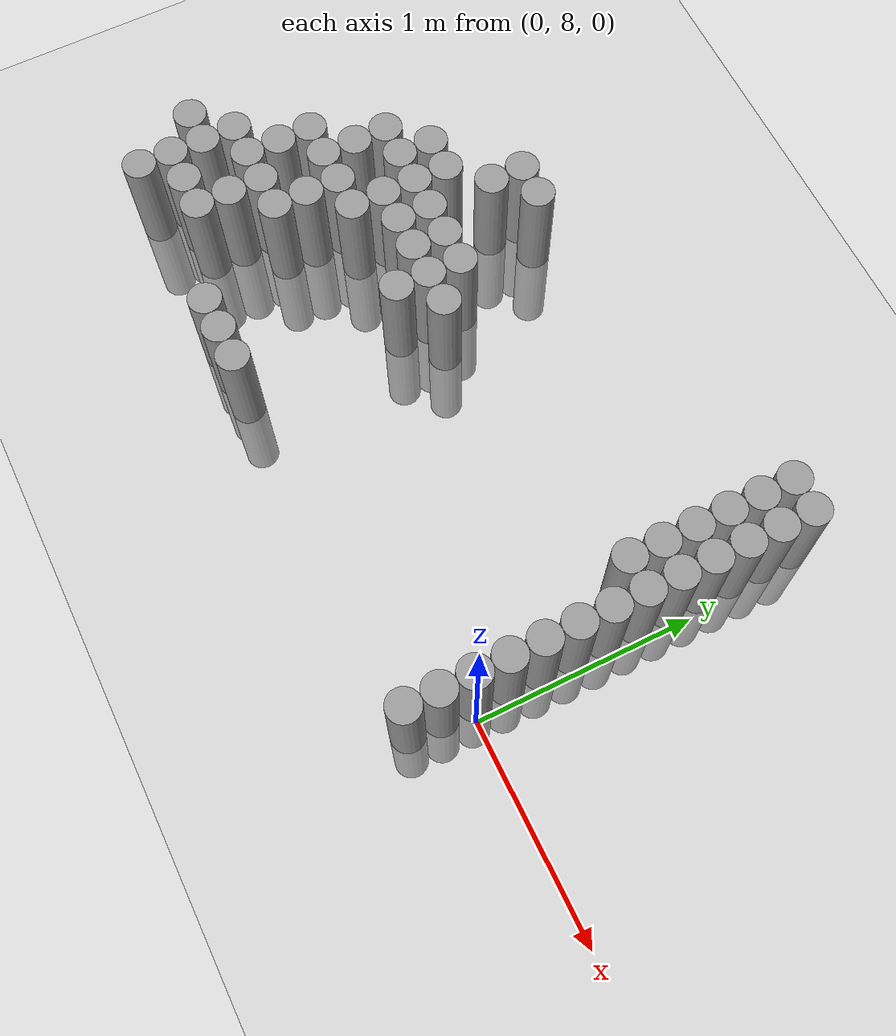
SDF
<sdf version="1.6">
 <world name="default">
  <model name="ground_plane">
   <static>1</static>
   <static>1</static>
   <link name="link">
    <collision name="collision">
     <geometry><plane><normal>0 0 1</normal><size>100 100</size></plane></geometry>
     <surface><friction><ode><mu>100</mu><mu2>50</mu2></ode></friction></surface>
    </collision>
    <visual name="visual">
     <cast_shadows>0</cast_shadows>
     <geometry><plane><normal>0 0 1</normal><size>100 100</size></plane></geometry>
     <material>
      <script><uri>file://media/materials/scripts/gazebo.material</uri><name>Gazebo/Grey</name></script>
     </material>
    </visual>
   </link>
  </model>
  <model name="unit_cylinder_165">
   <static>1</static>
   <pose>-2.925000 8.025000 0.000000 0.000000 0.000000 0.000000</pose>
   <link name="link">
    <inertial>
     <mass>1</mass>
     <inertia><ixx>0.145833</ixx><ixy>0</ixy><ixz>0</ixz><iyy>0.145833</iyy><iyz>0</iyz><izz>0.125</izz></inertia>
    </inertial>
    <collision name="collision">
     <geometry><cylinder><radius>0.075000</radius><length>1</length></cylinder></geometry>
    </collision>
    <visual name="visual">
     <geometry><cylinder><radius>0.075000</radius><length>1</length></cylinder></geometry>
     <material>
      <script><name>Gazebo/Grey</name><uri>file://media/materials/scripts/gazebo.material</uri></script>
     </material>
    </visual>
   </link>
  </model>
  <model name="unit_cylinder_169">
   <static>1</static>
   <pose>-2.775000 7.725000 0.000000 0.000000 0.000000 0.000000</pose>
   <link name="link">
    <inertial>
     <mass>1</mass>
     <inertia><ixx>0.145833</ixx><ixy>0</ixy><ixz>0</ixz><iyy>0.145833</iyy><iyz>0</iyz><izz>0.125</izz></inertia>
    </inertial>
    <collision name="collision">
     <geometry><cylinder><radius>0.075000</radius><length>1</length></cylinder></geometry>
    </collision>
    <visual name="visual">
     <geometry><cylinder><radius>0.075000</radius><length>1</length></cylinder></geometry>
     <material>
      <script><name>Gazebo/Grey</name><uri>file://media/materials/scripts/gazebo.material</uri></script>
     </material>
    </visual>
   </link>
  </model>
  <model name="unit_cylinder_170">
   <static>1</static>
   <pose>-2.775000 7.875000 0.000000 0.000000 0.000000 0.000000</pose>
   <link name="link">
    <inertial>
     <mass>1</mass>
     <inertia><ixx>0.145833</ixx><ixy>0</ixy><ixz>0</ixz><iyy>0.145833</iyy><iyz>0</iyz><izz>0.125</izz></inertia>
    </inertial>
    <collision name="collision">
     <geometry><cylinder><radius>0.075000</radius><length>1</length></cylinder></geometry>
    </collision>
    <visual name="visual">
     <geometry><cylinder><radius>0.075000</radius><length>1</length></cylinder></geometry>
     <material>
      <script><name>Gazebo/Grey</name><uri>file://media/materials/scripts/gazebo.material</uri></script>
     </material>
    </visual>
   </link>
  </model>
  <model name="unit_cylinder_171">
   <static>1</static>
   <pose>-2.775000 8.025000 0.000000 0.000000 0.000000 0.000000</pose>
   <link name="link">
    <inertial>
     <mass>1</mass>
     <inertia><ixx>0.145833</ixx><ixy>0</ixy><ixz>0</ixz><iyy>0.145833</iyy><iyz>0</iyz><izz>0.125</izz></inertia>
    </inertial>
    <collision name="collision">
     <geometry><cylinder><radius>0.075000</radius><length>1</length></cylinder></geometry>
    </collision>
    <visual name="visual">
     <geometry><cylinder><radius>0.075000</radius><length>1</length></cylinder></geometry>
     <material>
      <script><name>Gazebo/Grey</name><uri>file://media/materials/scripts/gazebo.material</uri></script>
     </material>
    </visual>
   </link>
  </model>
  <model name="unit_cylinder_172">
   <static>1</static>
   <pose>-2.775000 8.175000 0.000000 0.000000 0.000000 0.000000</pose>
   <link name="link">
    <inertial>
     <mass>1</mass>
     <inertia><ixx>0.145833</ixx><ixy>0</ixy><ixz>0</ixz><iyy>0.145833</iyy><iyz>0</iyz><izz>0.125</izz></inertia>
    </inertial>
    <collision name="collision">
     <geometry><cylinder><radius>0.075000</radius><length>1</length></cylinder></geometry>
    </collision>
    <visual name="visual">
     <geometry><cylinder><radius>0.075000</radius><length>1</length></cylinder></geometry>
     <material>
      <script><name>Gazebo/Grey</name><uri>file://media/materials/scripts/gazebo.material</uri></script>
     </material>
    </visual>
   </link>
  </model>
  <model name="unit_cylinder_175">
   <static>1</static>
   <pose>-2.625000 7.875000 0.000000 0.000000 0.000000 0.000000</pose>
   <link name="link">
    <inertial>
     <mass>1</mass>
     <inertia><ixx>0.145833</ixx><ixy>0</ixy><ixz>0</ixz><iyy>0.145833</iyy><iyz>0</iyz><izz>0.125</izz></inertia>
    </inertial>
    <collision name="collision">
     <geometry><cylinder><radius>0.075000</radius><length>1</length></cylinder></geometry>
    </collision>
    <visual name="visual">
     <geometry><cylinder><radius>0.075000</radius><length>1</length></cylinder></geometry>
     <material>
      <script><name>Gazebo/Grey</name><uri>file://media/materials/scripts/gazebo.material</uri></script>
     </material>
    </visual>
   </link>
  </model>
  <model name="unit_cylinder_176">
   <static>1</static>
   <pose>-2.625000 8.175000 0.000000 0.000000 0.000000 0.000000</pose>
   <link name="link">
    <inertial>
     <mass>1</mass>
     <inertia><ixx>0.145833</ixx><ixy>0</ixy><ixz>0</ixz><iyy>0.145833</iyy><iyz>0</iyz><izz>0.125</izz></inertia>
    </inertial>
    <collision name="collision">
     <geometry><cylinder><radius>0.075000</radius><length>1</length></cylinder></geometry>
    </collision>
    <visual name="visual">
     <geometry><cylinder><radius>0.075000</radius><length>1</length></cylinder></geometry>
     <material>
      <script><name>Gazebo/Grey</name><uri>file://media/materials/scripts/gazebo.material</uri></script>
     </material>
    </visual>
   </link>
  </model>
  <model name="unit_cylinder_177">
   <static>1</static>
   <pose>-2.625000 8.325000 0.000000 0.000000 0.000000 0.000000</pose>
   <link name="link">
    <inertial>
     <mass>1</mass>
     <inertia><ixx>0.145833</ixx><ixy>0</ixy><ixz>0</ixz><iyy>0.145833</iyy><iyz>0</iyz><izz>0.125</izz></inertia>
    </inertial>
    <collision name="collision">
     <geometry><cylinder><radius>0.075000</radius><length>1</length></cylinder></geometry>
    </collision>
    <visual name="visual">
     <geometry><cylinder><radius>0.075000</radius><length>1</length></cylinder></geometry>
     <material>
      <script><name>Gazebo/Grey</name><uri>file://media/materials/scripts/gazebo.material</uri></script>
     </material>
    </visual>
   </link>
  </model>
  <model name="unit_cylinder_178">
   <static>1</static>
   <pose>-2.625000 8.475000 0.000000 0.000000 0.000000 0.000000</pose>
   <link name="link">
    <inertial>
     <mass>1</mass>
     <inertia><ixx>0.145833</ixx><ixy>0</ixy><ixz>0</ixz><iyy>0.145833</iyy><iyz>0</iyz><izz>0.125</izz></inertia>
    </inertial>
    <collision name="collision">
     <geometry><cylinder><radius>0.075000</radius><length>1</length></cylinder></geometry>
    </collision>
    <visual name="visual">
     <geometry><cylinder><radius>0.075000</radius><length>1</length></cylinder></geometry>
     <material>
      <script><name>Gazebo/Grey</name><uri>file://media/materials/scripts/gazebo.material</uri></script>
     </material>
    </visual>
   </link>
  </model>
  <model name="unit_cylinder_179">
   <static>1</static>
   <pose>-2.475000 7.875000 0.000000 0.000000 0.000000 0.000000</pose>
   <link name="link">
    <inertial>
     <mass>1</mass>
     <inertia><ixx>0.145833</ixx><ixy>0</ixy><ixz>0</ixz><iyy>0.145833</iyy><iyz>0</iyz><izz>0.125</izz></inertia>
    </inertial>
    <collision name="collision">
     <geometry><cylinder><radius>0.075000</radius><length>1</length></cylinder></geometry>
    </collision>
    <visual name="visual">
     <geometry><cylinder><radius>0.075000</radius><length>1</length></cylinder></geometry>
     <material>
      <script><name>Gazebo/Grey</name><uri>file://media/materials/scripts/gazebo.material</uri></script>
     </material>
    </visual>
   </link>
  </model>
  <model name="unit_cylinder_180">
   <static>1</static>
   <pose>-2.475000 8.025000 0.000000 0.000000 0.000000 0.000000</pose>
   <link name="link">
    <inertial>
     <mass>1</mass>
     <inertia><ixx>0.145833</ixx><ixy>0</ixy><ixz>0</ixz><iyy>0.145833</iyy><iyz>0</iyz><izz>0.125</izz></inertia>
    </inertial>
    <collision name="collision">
     <geometry><cylinder><radius>0.075000</radius><length>1</length></cylinder></geometry>
    </collision>
    <visual name="visual">
     <geometry><cylinder><radius>0.075000</radius><length>1</length></cylinder></geometry>
     <material>
      <script><name>Gazebo/Grey</name><uri>file://media/materials/scripts/gazebo.material</uri></script>
     </material>
    </visual>
   </link>
  </model>
  <model name="unit_cylinder_181">
   <static>1</static>
   <pose>-2.475000 8.175000 0.000000 0.000000 0.000000 0.000000</pose>
   <link name="link">
    <inertial>
     <mass>1</mass>
     <inertia><ixx>0.145833</ixx><ixy>0</ixy><ixz>0</ixz><iyy>0.145833</iyy><iyz>0</iyz><izz>0.125</izz></inertia>
    </inertial>
    <collision name="collision">
     <geometry><cylinder><radius>0.075000</radius><length>1</length></cylinder></geometry>
    </collision>
    <visual name="visual">
     <geometry><cylinder><radius>0.075000</radius><length>1</length></cylinder></geometry>
     <material>
      <script><name>Gazebo/Grey</name><uri>file://media/materials/scripts/gazebo.material</uri></script>
     </material>
    </visual>
   </link>
  </model>
  <model name="unit_cylinder_182">
   <static>1</static>
   <pose>-2.475000 8.475000 0.000000 0.000000 0.000000 0.000000</pose>
   <link name="link">
    <inertial>
     <mass>1</mass>
     <inertia><ixx>0.145833</ixx><ixy>0</ixy><ixz>0</ixz><iyy>0.145833</iyy><iyz>0</iyz><izz>0.125</izz></inertia>
    </inertial>
    <collision name="collision">
     <geometry><cylinder><radius>0.075000</radius><length>1</length></cylinder></geometry>
    </collision>
    <visual name="visual">
     <geometry><cylinder><radius>0.075000</radius><length>1</length></cylinder></geometry>
     <material>
      <script><name>Gazebo/Grey</name><uri>file://media/materials/scripts/gazebo.material</uri></script>
     </material>
    </visual>
   </link>
  </model>
  <model name="unit_cylinder_183">
   <static>1</static>
   <pose>-2.475000 8.625000 0.000000 0.000000 0.000000 0.000000</pose>
   <link name="link">
    <inertial>
     <mass>1</mass>
     <inertia><ixx>0.145833</ixx><ixy>0</ixy><ixz>0</ixz><iyy>0.145833</iyy><iyz>0</iyz><izz>0.125</izz></inertia>
    </inertial>
    <collision name="collision">
     <geometry><cylinder><radius>0.075000</radius><length>1</length></cylinder></geometry>
    </collision>
    <visual name="visual">
     <geometry><cylinder><radius>0.075000</radius><length>1</length></cylinder></geometry>
     <material>
      <script><name>Gazebo/Grey</name><uri>file://media/materials/scripts/gazebo.material</uri></script>
     </material>
    </visual>
   </link>
  </model>
  <model name="unit_cylinder_184">
   <static>1</static>
   <pose>-2.475000 8.775000 0.000000 0.000000 0.000000 0.000000</pose>
   <link name="link">
    <inertial>
     <mass>1</mass>
     <inertia><ixx>0.145833</ixx><ixy>0</ixy><ixz>0</ixz><iyy>0.145833</iyy><iyz>0</iyz><izz>0.125</izz></inertia>
    </inertial>
    <collision name="collision">
     <geometry><cylinder><radius>0.075000</radius><length>1</length></cylinder></geometry>
    </collision>
    <visual name="visual">
     <geometry><cylinder><radius>0.075000</radius><length>1</length></cylinder></geometry>
     <material>
      <script><name>Gazebo/Grey</name><uri>file://media/materials/scripts/gazebo.material</uri></script>
     </material>
    </visual>
   </link>
  </model>
  <model name="unit_cylinder_186">
   <static>1</static>
   <pose>-2.325000 8.175000 0.000000 0.000000 0.000000 0.000000</pose>
   <link name="link">
    <inertial>
     <mass>1</mass>
     <inertia><ixx>0.145833</ixx><ixy>0</ixy><ixz>0</ixz><iyy>0.145833</iyy><iyz>0</iyz><izz>0.125</izz></inertia>
    </inertial>
    <collision name="collision">
     <geometry><cylinder><radius>0.075000</radius><length>1</length></cylinder></geometry>
    </collision>
    <visual name="visual">
     <geometry><cylinder><radius>0.075000</radius><length>1</length></cylinder></geometry>
     <material>
      <script><name>Gazebo/Grey</name><uri>file://media/materials/scripts/gazebo.material</uri></script>
     </material>
    </visual>
   </link>
  </model>
  <model name="unit_cylinder_187">
   <static>1</static>
   <pose>-2.325000 8.325000 0.000000 0.000000 0.000000 0.000000</pose>
   <link name="link">
    <inertial>
     <mass>1</mass>
     <inertia><ixx>0.145833</ixx><ixy>0</ixy><ixz>0</ixz><iyy>0.145833</iyy><iyz>0</iyz><izz>0.125</izz></inertia>
    </inertial>
    <collision name="collision">
     <geometry><cylinder><radius>0.075000</radius><length>1</length></cylinder></geometry>
    </collision>
    <visual name="visual">
     <geometry><cylinder><radius>0.075000</radius><length>1</length></cylinder></geometry>
     <material>
      <script><name>Gazebo/Grey</name><uri>file://media/materials/scripts/gazebo.material</uri></script>
     </material>
    </visual>
   </link>
  </model>
  <model name="unit_cylinder_188">
   <static>1</static>
   <pose>-2.325000 8.475000 0.000000 0.000000 0.000000 0.000000</pose>
   <link name="link">
    <inertial>
     <mass>1</mass>
     <inertia><ixx>0.145833</ixx><ixy>0</ixy><ixz>0</ixz><iyy>0.145833</iyy><iyz>0</iyz><izz>0.125</izz></inertia>
    </inertial>
    <collision name="collision">
     <geometry><cylinder><radius>0.075000</radius><length>1</length></cylinder></geometry>
    </collision>
    <visual name="visual">
     <geometry><cylinder><radius>0.075000</radius><length>1</length></cylinder></geometry>
     <material>
      <script><name>Gazebo/Grey</name><uri>file://media/materials/scripts/gazebo.material</uri></script>
     </material>
    </visual>
   </link>
  </model>
  <model name="unit_cylinder_189">
   <static>1</static>
   <pose>-2.325000 8.775000 0.000000 0.000000 0.000000 0.000000</pose>
   <link name="link">
    <inertial>
     <mass>1</mass>
     <inertia><ixx>0.145833</ixx><ixy>0</ixy><ixz>0</ixz><iyy>0.145833</iyy><iyz>0</iyz><izz>0.125</izz></inertia>
    </inertial>
    <collision name="collision">
     <geometry><cylinder><radius>0.075000</radius><length>1</length></cylinder></geometry>
    </collision>
    <visual name="visual">
     <geometry><cylinder><radius>0.075000</radius><length>1</length></cylinder></geometry>
     <material>
      <script><name>Gazebo/Grey</name><uri>file://media/materials/scripts/gazebo.material</uri></script>
     </material>
    </visual>
   </link>
  </model>
  <model name="unit_cylinder_190">
   <static>1</static>
   <pose>-2.325000 8.925000 0.000000 0.000000 0.000000 0.000000</pose>
   <link name="link">
    <inertial>
     <mass>1</mass>
     <inertia><ixx>0.145833</ixx><ixy>0</ixy><ixz>0</ixz><iyy>0.145833</iyy><iyz>0</iyz><izz>0.125</izz></inertia>
    </inertial>
    <collision name="collision">
     <geometry><cylinder><radius>0.075000</radius><length>1</length></cylinder></geometry>
    </collision>
    <visual name="visual">
     <geometry><cylinder><radius>0.075000</radius><length>1</length></cylinder></geometry>
     <material>
      <script><name>Gazebo/Grey</name><uri>file://media/materials/scripts/gazebo.material</uri></script>
     </material>
    </visual>
   </link>
  </model>
  <model name="unit_cylinder_195">
   <static>1</static>
   <pose>-2.175000 8.475000 0.000000 0.000000 0.000000 0.000000</pose>
   <link name="link">
    <inertial>
     <mass>1</mass>
     <inertia><ixx>0.145833</ixx><ixy>0</ixy><ixz>0</ixz><iyy>0.145833</iyy><iyz>0</iyz><izz>0.125</izz></inertia>
    </inertial>
    <collision name="collision">
     <geometry><cylinder><radius>0.075000</radius><length>1</length></cylinder></geometry>
    </collision>
    <visual name="visual">
     <geometry><cylinder><radius>0.075000</radius><length>1</length></cylinder></geometry>
     <material>
      <script><name>Gazebo/Grey</name><uri>file://media/materials/scripts/gazebo.material</uri></script>
     </material>
    </visual>
   </link>
  </model>
  <model name="unit_cylinder_196">
   <static>1</static>
   <pose>-2.175000 8.625000 0.000000 0.000000 0.000000 0.000000</pose>
   <link name="link">
    <inertial>
     <mass>1</mass>
     <inertia><ixx>0.145833</ixx><ixy>0</ixy><ixz>0</ixz><iyy>0.145833</iyy><iyz>0</iyz><izz>0.125</izz></inertia>
    </inertial>
    <collision name="collision">
     <geometry><cylinder><radius>0.075000</radius><length>1</length></cylinder></geometry>
    </collision>
    <visual name="visual">
     <geometry><cylinder><radius>0.075000</radius><length>1</length></cylinder></geometry>
     <material>
      <script><name>Gazebo/Grey</name><uri>file://media/materials/scripts/gazebo.material</uri></script>
     </material>
    </visual>
   </link>
  </model>
  <model name="unit_cylinder_197">
   <static>1</static>
   <pose>-2.175000 8.775000 0.000000 0.000000 0.000000 0.000000</pose>
   <link name="link">
    <inertial>
     <mass>1</mass>
     <inertia><ixx>0.145833</ixx><ixy>0</ixy><ixz>0</ixz><iyy>0.145833</iyy><iyz>0</iyz><izz>0.125</izz></inertia>
    </inertial>
    <collision name="collision">
     <geometry><cylinder><radius>0.075000</radius><length>1</length></cylinder></geometry>
    </collision>
    <visual name="visual">
     <geometry><cylinder><radius>0.075000</radius><length>1</length></cylinder></geometry>
     <material>
      <script><name>Gazebo/Grey</name><uri>file://media/materials/scripts/gazebo.material</uri></script>
     </material>
    </visual>
   </link>
  </model>
  <model name="unit_cylinder_198">
   <static>1</static>
   <pose>-2.175000 8.925000 0.000000 0.000000 0.000000 0.000000</pose>
   <link name="link">
    <inertial>
     <mass>1</mass>
     <inertia><ixx>0.145833</ixx><ixy>0</ixy><ixz>0</ixz><iyy>0.145833</iyy><iyz>0</iyz><izz>0.125</izz></inertia>
    </inertial>
    <collision name="collision">
     <geometry><cylinder><radius>0.075000</radius><length>1</length></cylinder></geometry>
    </collision>
    <visual name="visual">
     <geometry><cylinder><radius>0.075000</radius><length>1</length></cylinder></geometry>
     <material>
      <script><name>Gazebo/Grey</name><uri>file://media/materials/scripts/gazebo.material</uri></script>
     </material>
    </visual>
   </link>
  </model>
  <model name="unit_cylinder_204">
   <static>1</static>
   <pose>-2.025000 7.725000 0.000000 0.000000 0.000000 0.000000</pose>
   <link name="link">
    <inertial>
     <mass>1</mass>
     <inertia><ixx>0.145833</ixx><ixy>0</ixy><ixz>0</ixz><iyy>0.145833</iyy><iyz>0</iyz><izz>0.125</izz></inertia>
    </inertial>
    <collision name="collision">
     <geometry><cylinder><radius>0.075000</radius><length>1</length></cylinder></geometry>
    </collision>
    <visual name="visual">
     <geometry><cylinder><radius>0.075000</radius><length>1</length></cylinder></geometry>
     <material>
      <script><name>Gazebo/Grey</name><uri>file://media/materials/scripts/gazebo.material</uri></script>
     </material>
    </visual>
   </link>
  </model>
  <model name="unit_cylinder_205">
   <static>1</static>
   <pose>-2.025000 8.625000 0.000000 0.000000 0.000000 0.000000</pose>
   <link name="link">
    <inertial>
     <mass>1</mass>
     <inertia><ixx>0.145833</ixx><ixy>0</ixy><ixz>0</ixz><iyy>0.145833</iyy><iyz>0</iyz><izz>0.125</izz></inertia>
    </inertial>
    <collision name="collision">
     <geometry><cylinder><radius>0.075000</radius><length>1</length></cylinder></geometry>
    </collision>
    <visual name="visual">
     <geometry><cylinder><radius>0.075000</radius><length>1</length></cylinder></geometry>
     <material>
      <script><name>Gazebo/Grey</name><uri>file://media/materials/scripts/gazebo.material</uri></script>
     </material>
    </visual>
   </link>
  </model>
  <model name="unit_cylinder_206">
   <static>1</static>
   <pose>-2.025000 8.775000 0.000000 0.000000 0.000000 0.000000</pose>
   <link name="link">
    <inertial>
     <mass>1</mass>
     <inertia><ixx>0.145833</ixx><ixy>0</ixy><ixz>0</ixz><iyy>0.145833</iyy><iyz>0</iyz><izz>0.125</izz></inertia>
    </inertial>
    <collision name="collision">
     <geometry><cylinder><radius>0.075000</radius><length>1</length></cylinder></geometry>
    </collision>
    <visual name="visual">
     <geometry><cylinder><radius>0.075000</radius><length>1</length></cylinder></geometry>
     <material>
      <script><name>Gazebo/Grey</name><uri>file://media/materials/scripts/gazebo.material</uri></script>
     </material>
    </visual>
   </link>
  </model>
  <model name="unit_cylinder_207">
   <static>1</static>
   <pose>-2.025000 9.075000 0.000000 0.000000 0.000000 0.000000</pose>
   <link name="link">
    <inertial>
     <mass>1</mass>
     <inertia><ixx>0.145833</ixx><ixy>0</ixy><ixz>0</ixz><iyy>0.145833</iyy><iyz>0</iyz><izz>0.125</izz></inertia>
    </inertial>
    <collision name="collision">
     <geometry><cylinder><radius>0.075000</radius><length>1</length></cylinder></geometry>
    </collision>
    <visual name="visual">
     <geometry><cylinder><radius>0.075000</radius><length>1</length></cylinder></geometry>
     <material>
      <script><name>Gazebo/Grey</name><uri>file://media/materials/scripts/gazebo.material</uri></script>
     </material>
    </visual>
   </link>
  </model>
  <model name="unit_cylinder_208">
   <static>1</static>
   <pose>-2.025000 9.225000 0.000000 0.000000 0.000000 0.000000</pose>
   <link name="link">
    <inertial>
     <mass>1</mass>
     <inertia><ixx>0.145833</ixx><ixy>0</ixy><ixz>0</ixz><iyy>0.145833</iyy><iyz>0</iyz><izz>0.125</izz></inertia>
    </inertial>
    <collision name="collision">
     <geometry><cylinder><radius>0.075000</radius><length>1</length></cylinder></geometry>
    </collision>
    <visual name="visual">
     <geometry><cylinder><radius>0.075000</radius><length>1</length></cylinder></geometry>
     <material>
      <script><name>Gazebo/Grey</name><uri>file://media/materials/scripts/gazebo.material</uri></script>
     </material>
    </visual>
   </link>
  </model>
  <model name="unit_cylinder_217">
   <static>1</static>
   <pose>-1.875000 7.725000 0.000000 0.000000 0.000000 0.000000</pose>
   <link name="link">
    <inertial>
     <mass>1</mass>
     <inertia><ixx>0.145833</ixx><ixy>0</ixy><ixz>0</ixz><iyy>0.145833</iyy><iyz>0</iyz><izz>0.125</izz></inertia>
    </inertial>
    <collision name="collision">
     <geometry><cylinder><radius>0.075000</radius><length>1</length></cylinder></geometry>
    </collision>
    <visual name="visual">
     <geometry><cylinder><radius>0.075000</radius><length>1</length></cylinder></geometry>
     <material>
      <script><name>Gazebo/Grey</name><uri>file://media/materials/scripts/gazebo.material</uri></script>
     </material>
    </visual>
   </link>
  </model>
  <model name="unit_cylinder_218">
   <static>1</static>
   <pose>-1.875000 8.625000 0.000000 0.000000 0.000000 0.000000</pose>
   <link name="link">
    <inertial>
     <mass>1</mass>
     <inertia><ixx>0.145833</ixx><ixy>0</ixy><ixz>0</ixz><iyy>0.145833</iyy><iyz>0</iyz><izz>0.125</izz></inertia>
    </inertial>
    <collision name="collision">
     <geometry><cylinder><radius>0.075000</radius><length>1</length></cylinder></geometry>
    </collision>
    <visual name="visual">
     <geometry><cylinder><radius>0.075000</radius><length>1</length></cylinder></geometry>
     <material>
      <script><name>Gazebo/Grey</name><uri>file://media/materials/scripts/gazebo.material</uri></script>
     </material>
    </visual>
   </link>
  </model>
  <model name="unit_cylinder_219">
   <static>1</static>
   <pose>-1.875000 8.775000 0.000000 0.000000 0.000000 0.000000</pose>
   <link name="link">
    <inertial>
     <mass>1</mass>
     <inertia><ixx>0.145833</ixx><ixy>0</ixy><ixz>0</ixz><iyy>0.145833</iyy><iyz>0</iyz><izz>0.125</izz></inertia>
    </inertial>
    <collision name="collision">
     <geometry><cylinder><radius>0.075000</radius><length>1</length></cylinder></geometry>
    </collision>
    <visual name="visual">
     <geometry><cylinder><radius>0.075000</radius><length>1</length></cylinder></geometry>
     <material>
      <script><name>Gazebo/Grey</name><uri>file://media/materials/scripts/gazebo.material</uri></script>
     </material>
    </visual>
   </link>
  </model>
  <model name="unit_cylinder_220">
   <static>1</static>
   <pose>-1.875000 9.225000 0.000000 0.000000 0.000000 0.000000</pose>
   <link name="link">
    <inertial>
     <mass>1</mass>
     <inertia><ixx>0.145833</ixx><ixy>0</ixy><ixz>0</ixz><iyy>0.145833</iyy><iyz>0</iyz><izz>0.125</izz></inertia>
    </inertial>
    <collision name="collision">
     <geometry><cylinder><radius>0.075000</radius><length>1</length></cylinder></geometry>
    </collision>
    <visual name="visual">
     <geometry><cylinder><radius>0.075000</radius><length>1</length></cylinder></geometry>
     <material>
      <script><name>Gazebo/Grey</name><uri>file://media/materials/scripts/gazebo.material</uri></script>
     </material>
    </visual>
   </link>
  </model>
  <model name="unit_cylinder_226">
   <static>1</static>
   <pose>-1.725000 7.725000 0.000000 0.000000 0.000000 0.000000</pose>
   <link name="link">
    <inertial>
     <mass>1</mass>
     <inertia><ixx>0.145833</ixx><ixy>0</ixy><ixz>0</ixz><iyy>0.145833</iyy><iyz>0</iyz><izz>0.125</izz></inertia>
    </inertial>
    <collision name="collision">
     <geometry><cylinder><radius>0.075000</radius><length>1</length></cylinder></geometry>
    </collision>
    <visual name="visual">
     <geometry><cylinder><radius>0.075000</radius><length>1</length></cylinder></geometry>
     <material>
      <script><name>Gazebo/Grey</name><uri>file://media/materials/scripts/gazebo.material</uri></script>
     </material>
    </visual>
   </link>
  </model>
  <model name="unit_cylinder_227">
   <static>1</static>
   <pose>-1.725000 8.475000 0.000000 0.000000 0.000000 0.000000</pose>
   <link name="link">
    <inertial>
     <mass>1</mass>
     <inertia><ixx>0.145833</ixx><ixy>0</ixy><ixz>0</ixz><iyy>0.145833</iyy><iyz>0</iyz><izz>0.125</izz></inertia>
    </inertial>
    <collision name="collision">
     <geometry><cylinder><radius>0.075000</radius><length>1</length></cylinder></geometry>
    </collision>
    <visual name="visual">
     <geometry><cylinder><radius>0.075000</radius><length>1</length></cylinder></geometry>
     <material>
      <script><name>Gazebo/Grey</name><uri>file://media/materials/scripts/gazebo.material</uri></script>
     </material>
    </visual>
   </link>
  </model>
  <model name="unit_cylinder_228">
   <static>1</static>
   <pose>-1.725000 8.625000 0.000000 0.000000 0.000000 0.000000</pose>
   <link name="link">
    <inertial>
     <mass>1</mass>
     <inertia><ixx>0.145833</ixx><ixy>0</ixy><ixz>0</ixz><iyy>0.145833</iyy><iyz>0</iyz><izz>0.125</izz></inertia>
    </inertial>
    <collision name="collision">
     <geometry><cylinder><radius>0.075000</radius><length>1</length></cylinder></geometry>
    </collision>
    <visual name="visual">
     <geometry><cylinder><radius>0.075000</radius><length>1</length></cylinder></geometry>
     <material>
      <script><name>Gazebo/Grey</name><uri>file://media/materials/scripts/gazebo.material</uri></script>
     </material>
    </visual>
   </link>
  </model>
  <model name="unit_cylinder_229">
   <static>1</static>
   <pose>-1.725000 8.775000 0.000000 0.000000 0.000000 0.000000</pose>
   <link name="link">
    <inertial>
     <mass>1</mass>
     <inertia><ixx>0.145833</ixx><ixy>0</ixy><ixz>0</ixz><iyy>0.145833</iyy><iyz>0</iyz><izz>0.125</izz></inertia>
    </inertial>
    <collision name="collision">
     <geometry><cylinder><radius>0.075000</radius><length>1</length></cylinder></geometry>
    </collision>
    <visual name="visual">
     <geometry><cylinder><radius>0.075000</radius><length>1</length></cylinder></geometry>
     <material>
      <script><name>Gazebo/Grey</name><uri>file://media/materials/scripts/gazebo.material</uri></script>
     </material>
    </visual>
   </link>
  </model>
  <model name="unit_cylinder_233">
   <static>1</static>
   <pose>-1.575000 8.625000 0.000000 0.000000 0.000000 0.000000</pose>
   <link name="link">
    <inertial>
     <mass>1</mass>
     <inertia><ixx>0.145833</ixx><ixy>0</ixy><ixz>0</ixz><iyy>0.145833</iyy><iyz>0</iyz><izz>0.125</izz></inertia>
    </inertial>
    <collision name="collision">
     <geometry><cylinder><radius>0.075000</radius><length>1</length></cylinder></geometry>
    </collision>
    <visual name="visual">
     <geometry><cylinder><radius>0.075000</radius><length>1</length></cylinder></geometry>
     <material>
      <script><name>Gazebo/Grey</name><uri>file://media/materials/scripts/gazebo.material</uri></script>
     </material>
    </visual>
   </link>
  </model>
  <model name="unit_cylinder_250">
   <static>1</static>
   <pose>-0.225000 8.775000 0.000000 0.000000 0.000000 0.000000</pose>
   <link name="link">
    <inertial>
     <mass>1</mass>
     <inertia><ixx>0.145833</ixx><ixy>0</ixy><ixz>0</ixz><iyy>0.145833</iyy><iyz>0</iyz><izz>0.125</izz></inertia>
    </inertial>
    <collision name="collision">
     <geometry><cylinder><radius>0.075000</radius><length>1</length></cylinder></geometry>
    </collision>
    <visual name="visual">
     <geometry><cylinder><radius>0.075000</radius><length>1</length></cylinder></geometry>
     <material>
      <script><name>Gazebo/Grey</name><uri>file://media/materials/scripts/gazebo.material</uri></script>
     </material>
    </visual>
   </link>
  </model>
  <model name="unit_cylinder_251">
   <static>1</static>
   <pose>-0.225000 8.925000 0.000000 0.000000 0.000000 0.000000</pose>
   <link name="link">
    <inertial>
     <mass>1</mass>
     <inertia><ixx>0.145833</ixx><ixy>0</ixy><ixz>0</ixz><iyy>0.145833</iyy><iyz>0</iyz><izz>0.125</izz></inertia>
    </inertial>
    <collision name="collision">
     <geometry><cylinder><radius>0.075000</radius><length>1</length></cylinder></geometry>
    </collision>
    <visual name="visual">
     <geometry><cylinder><radius>0.075000</radius><length>1</length></cylinder></geometry>
     <material>
      <script><name>Gazebo/Grey</name><uri>file://media/materials/scripts/gazebo.material</uri></script>
     </material>
    </visual>
   </link>
  </model>
  <model name="unit_cylinder_252">
   <static>1</static>
   <pose>-0.225000 9.075000 0.000000 0.000000 0.000000 0.000000</pose>
   <link name="link">
    <inertial>
     <mass>1</mass>
     <inertia><ixx>0.145833</ixx><ixy>0</ixy><ixz>0</ixz><iyy>0.145833</iyy><iyz>0</iyz><izz>0.125</izz></inertia>
    </inertial>
    <collision name="collision">
     <geometry><cylinder><radius>0.075000</radius><length>1</length></cylinder></geometry>
    </collision>
    <visual name="visual">
     <geometry><cylinder><radius>0.075000</radius><length>1</length></cylinder></geometry>
     <material>
      <script><name>Gazebo/Grey</name><uri>file://media/materials/scripts/gazebo.material</uri></script>
     </material>
    </visual>
   </link>
  </model>
  <model name="unit_cylinder_253">
   <static>1</static>
   <pose>-0.225000 9.225000 0.000000 0.000000 0.000000 0.000000</pose>
   <link name="link">
    <inertial>
     <mass>1</mass>
     <inertia><ixx>0.145833</ixx><ixy>0</ixy><ixz>0</ixz><iyy>0.145833</iyy><iyz>0</iyz><izz>0.125</izz></inertia>
    </inertial>
    <collision name="collision">
     <geometry><cylinder><radius>0.075000</radius><length>1</length></cylinder></geometry>
    </collision>
    <visual name="visual">
     <geometry><cylinder><radius>0.075000</radius><length>1</length></cylinder></geometry>
     <material>
      <script><name>Gazebo/Grey</name><uri>file://media/materials/scripts/gazebo.material</uri></script>
     </material>
    </visual>
   </link>
  </model>
  <model name="unit_cylinder_254">
   <static>1</static>
   <pose>-0.225000 9.375000 0.000000 0.000000 0.000000 0.000000</pose>
   <link name="link">
    <inertial>
     <mass>1</mass>
     <inertia><ixx>0.145833</ixx><ixy>0</ixy><ixz>0</ixz><iyy>0.145833</iyy><iyz>0</iyz><izz>0.125</izz></inertia>
    </inertial>
    <collision name="collision">
     <geometry><cylinder><radius>0.075000</radius><length>1</length></cylinder></geometry>
    </collision>
    <visual name="visual">
     <geometry><cylinder><radius>0.075000</radius><length>1</length></cylinder></geometry>
     <material>
      <script><name>Gazebo/Grey</name><uri>file://media/materials/scripts/gazebo.material</uri></script>
     </material>
    </visual>
   </link>
  </model>
  <model name="unit_cylinder_255">
   <static>1</static>
   <pose>-0.225000 9.525000 0.000000 0.000000 0.000000 0.000000</pose>
   <link name="link">
    <inertial>
     <mass>1</mass>
     <inertia><ixx>0.145833</ixx><ixy>0</ixy><ixz>0</ixz><iyy>0.145833</iyy><iyz>0</iyz><izz>0.125</izz></inertia>
    </inertial>
    <collision name="collision">
     <geometry><cylinder><radius>0.075000</radius><length>1</length></cylinder></geometry>
    </collision>
    <visual name="visual">
     <geometry><cylinder><radius>0.075000</radius><length>1</length></cylinder></geometry>
     <material>
      <script><name>Gazebo/Grey</name><uri>file://media/materials/scripts/gazebo.material</uri></script>
     </material>
    </visual>
   </link>
  </model>
  <model name="unit_cylinder_273">
   <static>1</static>
   <pose>-0.075000 7.725000 0.000000 0.000000 0.000000 0.000000</pose>
   <link name="link">
    <inertial>
     <mass>1</mass>
     <inertia><ixx>0.145833</ixx><ixy>0</ixy><ixz>0</ixz><iyy>0.145833</iyy><iyz>0</iyz><izz>0.125</izz></inertia>
    </inertial>
    <collision name="collision">
     <geometry><cylinder><radius>0.075000</radius><length>1</length></cylinder></geometry>
    </collision>
    <visual name="visual">
     <geometry><cylinder><radius>0.075000</radius><length>1</length></cylinder></geometry>
     <material>
      <script><name>Gazebo/Grey</name><uri>file://media/materials/scripts/gazebo.material</uri></script>
     </material>
    </visual>
   </link>
  </model>
  <model name="unit_cylinder_274">
   <static>1</static>
   <pose>-0.075000 7.875000 0.000000 0.000000 0.000000 0.000000</pose>
   <link name="link">
    <inertial>
     <mass>1</mass>
     <inertia><ixx>0.145833</ixx><ixy>0</ixy><ixz>0</ixz><iyy>0.145833</iyy><iyz>0</iyz><izz>0.125</izz></inertia>
    </inertial>
    <collision name="collision">
     <geometry><cylinder><radius>0.075000</radius><length>1</length></cylinder></geometry>
    </collision>
    <visual name="visual">
     <geometry><cylinder><radius>0.075000</radius><length>1</length></cylinder></geometry>
     <material>
      <script><name>Gazebo/Grey</name><uri>file://media/materials/scripts/gazebo.material</uri></script>
     </material>
    </visual>
   </link>
  </model>
  <model name="unit_cylinder_275">
   <static>1</static>
   <pose>-0.075000 8.025000 0.000000 0.000000 0.000000 0.000000</pose>
   <link name="link">
    <inertial>
     <mass>1</mass>
     <inertia><ixx>0.145833</ixx><ixy>0</ixy><ixz>0</ixz><iyy>0.145833</iyy><iyz>0</iyz><izz>0.125</izz></inertia>
    </inertial>
    <collision name="collision">
     <geometry><cylinder><radius>0.075000</radius><length>1</length></cylinder></geometry>
    </collision>
    <visual name="visual">
     <geometry><cylinder><radius>0.075000</radius><length>1</length></cylinder></geometry>
     <material>
      <script><name>Gazebo/Grey</name><uri>file://media/materials/scripts/gazebo.material</uri></script>
     </material>
    </visual>
   </link>
  </model>
  <model name="unit_cylinder_276">
   <static>1</static>
   <pose>-0.075000 8.175000 0.000000 0.000000 0.000000 0.000000</pose>
   <link name="link">
    <inertial>
     <mass>1</mass>
     <inertia><ixx>0.145833</ixx><ixy>0</ixy><ixz>0</ixz><iyy>0.145833</iyy><iyz>0</iyz><izz>0.125</izz></inertia>
    </inertial>
    <collision name="collision">
     <geometry><cylinder><radius>0.075000</radius><length>1</length></cylinder></geometry>
    </collision>
    <visual name="visual">
     <geometry><cylinder><radius>0.075000</radius><length>1</length></cylinder></geometry>
     <material>
      <script><name>Gazebo/Grey</name><uri>file://media/materials/scripts/gazebo.material</uri></script>
     </material>
    </visual>
   </link>
  </model>
  <model name="unit_cylinder_277">
   <static>1</static>
   <pose>-0.075000 8.325000 0.000000 0.000000 0.000000 0.000000</pose>
   <link name="link">
    <inertial>
     <mass>1</mass>
     <inertia><ixx>0.145833</ixx><ixy>0</ixy><ixz>0</ixz><iyy>0.145833</iyy><iyz>0</iyz><izz>0.125</izz></inertia>
    </inertial>
    <collision name="collision">
     <geometry><cylinder><radius>0.075000</radius><length>1</length></cylinder></geometry>
    </collision>
    <visual name="visual">
     <geometry><cylinder><radius>0.075000</radius><length>1</length></cylinder></geometry>
     <material>
      <script><name>Gazebo/Grey</name><uri>file://media/materials/scripts/gazebo.material</uri></script>
     </material>
    </visual>
   </link>
  </model>
  <model name="unit_cylinder_278">
   <static>1</static>
   <pose>-0.075000 8.475000 0.000000 0.000000 0.000000 0.000000</pose>
   <link name="link">
    <inertial>
     <mass>1</mass>
     <inertia><ixx>0.145833</ixx><ixy>0</ixy><ixz>0</ixz><iyy>0.145833</iyy><iyz>0</iyz><izz>0.125</izz></inertia>
    </inertial>
    <collision name="collision">
     <geometry><cylinder><radius>0.075000</radius><length>1</length></cylinder></geometry>
    </collision>
    <visual name="visual">
     <geometry><cylinder><radius>0.075000</radius><length>1</length></cylinder></geometry>
     <material>
      <script><name>Gazebo/Grey</name><uri>file://media/materials/scripts/gazebo.material</uri></script>
     </material>
    </visual>
   </link>
  </model>
  <model name="unit_cylinder_279">
   <static>1</static>
   <pose>-0.075000 8.625000 0.000000 0.000000 0.000000 0.000000</pose>
   <link name="link">
    <inertial>
     <mass>1</mass>
     <inertia><ixx>0.145833</ixx><ixy>0</ixy><ixz>0</ixz><iyy>0.145833</iyy><iyz>0</iyz><izz>0.125</izz></inertia>
    </inertial>
    <collision name="collision">
     <geometry><cylinder><radius>0.075000</radius><length>1</length></cylinder></geometry>
    </collision>
    <visual name="visual">
     <geometry><cylinder><radius>0.075000</radius><length>1</length></cylinder></geometry>
     <material>
      <script><name>Gazebo/Grey</name><uri>file://media/materials/scripts/gazebo.material</uri></script>
     </material>
    </visual>
   </link>
  </model>
  <model name="unit_cylinder_280">
   <static>1</static>
   <pose>-0.075000 8.775000 0.000000 0.000000 0.000000 0.000000</pose>
   <link name="link">
    <inertial>
     <mass>1</mass>
     <inertia><ixx>0.145833</ixx><ixy>0</ixy><ixz>0</ixz><iyy>0.145833</iyy><iyz>0</iyz><izz>0.125</izz></inertia>
    </inertial>
    <collision name="collision">
     <geometry><cylinder><radius>0.075000</radius><length>1</length></cylinder></geometry>
    </collision>
    <visual name="visual">
     <geometry><cylinder><radius>0.075000</radius><length>1</length></cylinder></geometry>
     <material>
      <script><name>Gazebo/Grey</name><uri>file://media/materials/scripts/gazebo.material</uri></script>
     </material>
    </visual>
   </link>
  </model>
  <model name="unit_cylinder_281">
   <static>1</static>
   <pose>-0.075000 8.925000 0.000000 0.000000 0.000000 0.000000</pose>
   <link name="link">
    <inertial>
     <mass>1</mass>
     <inertia><ixx>0.145833</ixx><ixy>0</ixy><ixz>0</ixz><iyy>0.145833</iyy><iyz>0</iyz><izz>0.125</izz></inertia>
    </inertial>
    <collision name="collision">
     <geometry><cylinder><radius>0.075000</radius><length>1</length></cylinder></geometry>
    </collision>
    <visual name="visual">
     <geometry><cylinder><radius>0.075000</radius><length>1</length></cylinder></geometry>
     <material>
      <script><name>Gazebo/Grey</name><uri>file://media/materials/scripts/gazebo.material</uri></script>
     </material>
    </visual>
   </link>
  </model>
  <model name="unit_cylinder_282">
   <static>1</static>
   <pose>-0.075000 9.075000 0.000000 0.000000 0.000000 0.000000</pose>
   <link name="link">
    <inertial>
     <mass>1</mass>
     <inertia><ixx>0.145833</ixx><ixy>0</ixy><ixz>0</ixz><iyy>0.145833</iyy><iyz>0</iyz><izz>0.125</izz></inertia>
    </inertial>
    <collision name="collision">
     <geometry><cylinder><radius>0.075000</radius><length>1</length></cylinder></geometry>
    </collision>
    <visual name="visual">
     <geometry><cylinder><radius>0.075000</radius><length>1</length></cylinder></geometry>
     <material>
      <script><name>Gazebo/Grey</name><uri>file://media/materials/scripts/gazebo.material</uri></script>
     </material>
    </visual>
   </link>
  </model>
  <model name="unit_cylinder_283">
   <static>1</static>
   <pose>-0.075000 9.225000 0.000000 0.000000 0.000000 0.000000</pose>
   <link name="link">
    <inertial>
     <mass>1</mass>
     <inertia><ixx>0.145833</ixx><ixy>0</ixy><ixz>0</ixz><iyy>0.145833</iyy><iyz>0</iyz><izz>0.125</izz></inertia>
    </inertial>
    <collision name="collision">
     <geometry><cylinder><radius>0.075000</radius><length>1</length></cylinder></geometry>
    </collision>
    <visual name="visual">
     <geometry><cylinder><radius>0.075000</radius><length>1</length></cylinder></geometry>
     <material>
      <script><name>Gazebo/Grey</name><uri>file://media/materials/scripts/gazebo.material</uri></script>
     </material>
    </visual>
   </link>
  </model>
  <model name="unit_cylinder_284">
   <static>1</static>
   <pose>-0.075000 9.375000 0.000000 0.000000 0.000000 0.000000</pose>
   <link name="link">
    <inertial>
     <mass>1</mass>
     <inertia><ixx>0.145833</ixx><ixy>0</ixy><ixz>0</ixz><iyy>0.145833</iyy><iyz>0</iyz><izz>0.125</izz></inertia>
    </inertial>
    <collision name="collision">
     <geometry><cylinder><radius>0.075000</radius><length>1</length></cylinder></geometry>
    </collision>
    <visual name="visual">
     <geometry><cylinder><radius>0.075000</radius><length>1</length></cylinder></geometry>
     <material>
      <script><name>Gazebo/Grey</name><uri>file://media/materials/scripts/gazebo.material</uri></script>
     </material>
    </visual>
   </link>
  </model>
  <model name="unit_cylinder_285">
   <static>1</static>
   <pose>-0.075000 9.525000 0.000000 0.000000 0.000000 0.000000</pose>
   <link name="link">
    <inertial>
     <mass>1</mass>
     <inertia><ixx>0.145833</ixx><ixy>0</ixy><ixz>0</ixz><iyy>0.145833</iyy><iyz>0</iyz><izz>0.125</izz></inertia>
    </inertial>
    <collision name="collision">
     <geometry><cylinder><radius>0.075000</radius><length>1</length></cylinder></geometry>
    </collision>
    <visual name="visual">
     <geometry><cylinder><radius>0.075000</radius><length>1</length></cylinder></geometry>
     <material>
      <script><name>Gazebo/Grey</name><uri>file://media/materials/scripts/gazebo.material</uri></script>
     </material>
    </visual>
   </link>
  </model>
 </world>
</sdf>
